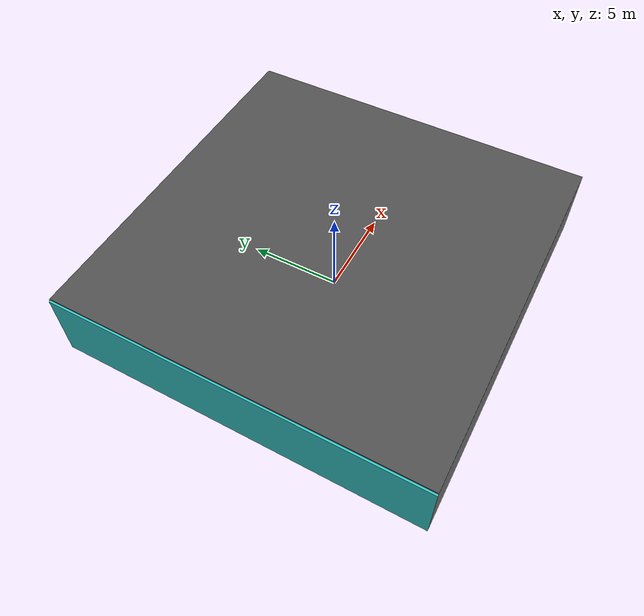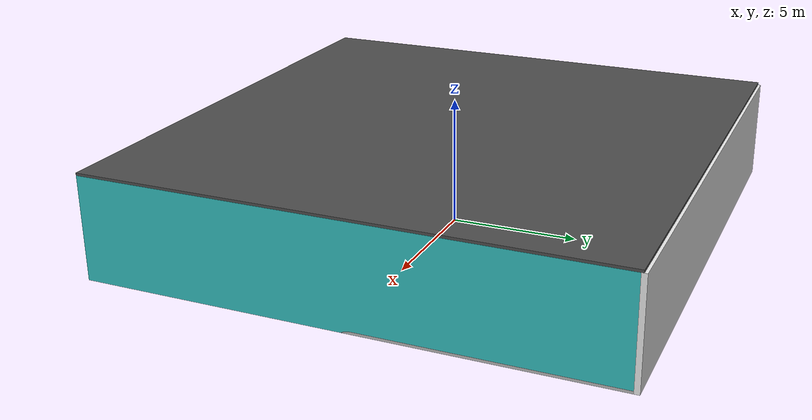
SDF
<sdf version="1.4">
 <world name="default">
  <physics type="ode">
   <max_step_size>0.001</max_step_size>
   <real_time_factor>1</real_time_factor>
   <real_time_update_rate>1000</real_time_update_rate>
   <gravity>0 0 -9.8</gravity>
  </physics>
  <scene><ambient>0.4 0.4 0.4 1</ambient><background>0.7 0.7 0.7 1</background><shadows>1</shadows></scene>
  <model name="Surrounding">
   <static>1</static>
   <link name="Ceiling">
    <collision name="Ceiling_Collision"><geometry><box><size>20 20 0.1</size></box></geometry></collision>
    <visual name="Ceiling_Visual">
     <geometry><box><size>20 20 0.1</size></box></geometry>
     <material>
      <script><uri>file://media/materials/scripts/gazebo.material</uri><name>Gazebo/DarkGrey</name></script>
     </material>
    </visual>
    <pose>0 0 4.05 0 0 0</pose>
   </link>
   <link name="Wall_South">
    <collision name="Wall_South_Collision">
     <geometry><box><size>20 0 4</size></box></geometry>
     <pose>0 0 2 0 -0 0</pose>
    </collision>
    <visual name="Wall_South_Visual">
     <pose>0 0 2 0 -0 0</pose>
     <geometry><box><size>20 0 4</size></box></geometry>
     <material>
      <script><uri>file://media/materials/scripts/gazebo.material</uri><name>Gazebo/Grey</name></script>
     </material>
    </visual>
    <velocity_decay><linear>0</linear><angular>0</angular></velocity_decay>
    <pose>0 -10 0 0 -0 0</pose>
   </link>
   <link name="Wall_East">
    <collision name="Wall_21_Collision">
     <geometry><box><size>20 0 4</size></box></geometry>
     <pose>0 0 2 0 -0 0</pose>
    </collision>
    <visual name="Wall_21_Visual">
     <pose>0 0 2 0 -0 0</pose>
     <geometry><box><size>20 0 4</size></box></geometry>
     <material>
      <script>
       <uri>file://media/materials/scripts/gazebo.material</uri>
       <name>Gazebo/TurquoiseGlowOutline</name>
      </script>
     </material>
    </visual>
    <velocity_decay><linear>0</linear><angular>0</angular></velocity_decay>
    <pose>10 0 0 0 -0 1.5708</pose>
   </link>
   <link name="Wall_North">
    <collision name="Wall_22_Collision">
     <geometry><box><size>20 0.2 4</size></box></geometry>
     <pose>0 0 2 0 -0 0</pose>
    </collision>
    <visual name="Wall_22_Visual">
     <pose>0 0 2 0 -0 0</pose>
     <geometry><box><size>20 0.2 4</size></box></geometry>
     <material>
      <script><uri>file://media/materials/scripts/gazebo.material</uri><name>Gazebo/White</name></script>
     </material>
    </visual>
    <velocity_decay><linear>0</linear><angular>0</angular></velocity_decay>
    <pose>0 10 0 0 -0 0</pose>
   </link>
   <link name="Wall_West">
    <collision name="Wall_23_Collision">
     <geometry><box><size>20 0.2 4</size></box></geometry>
     <pose>0 0 2 0 -0 0</pose>
    </collision>
    <visual name="Wall_23_Visual">
     <pose>0 0 2 0 -0 0</pose>
     <geometry><box><size>20 0.2 4</size></box></geometry>
     <material>
      <script>
       <uri>file://media/materials/scripts/gazebo.material</uri>
       <name>Gazebo/TurquoiseGlowOutline</name>
      </script>
     </material>
    </visual>
    <velocity_decay><linear>0</linear><angular>0</angular></velocity_decay>
    <pose>-10 0 0 0 0 -1.5708</pose>
   </link>
   <link name="Ground_link">
    <collision name="collision">
     <pose>0 0 .05 0 -0 0</pose>
     <geometry><box><size>20 20 0.1</size></box></geometry>
    </collision>
    <visual name="visual">
     <pose>0 0 .05 0 -0 0</pose>
     <geometry><box><size>20 20 0.1</size></box></geometry>
     <material>
      <script><uri>file://media/materials/scripts/gazebo.material</uri><name>Gazebo/JointAnchor</name></script>
     </material>
    </visual>
   </link>
   <static>1</static>
  </model>
  <spherical_coordinates>
   <surface_model>EARTH_WGS84</surface_model>
   <latitude_deg>0</latitude_deg>
   <longitude_deg>0</longitude_deg>
   <elevation>0</elevation>
   <heading_deg>0</heading_deg>
  </spherical_coordinates>
  <light name="lightball_0" type="diffuse">
   <diffuse>0.8 0.8 0.8 1</diffuse>
   <specular>0.2 0.2 0.2 1</specular>
   <attenuation>
    <range>100</range>
    <constant>0.7</constant>
    <linear>0.01</linear>
    <quadratic>0.001</quadratic>
   </attenuation>
   <direction>-0.5 0.1 -0.9</direction>
   <pose>0.587604856644 -3.50685347159 0.576763039107 0 0 0</pose>
  </light>
  <light name="lightball_1" type="diffuse">
   <diffuse>0.8 0.8 0.8 1</diffuse>
   <specular>0.2 0.2 0.2 1</specular>
   <attenuation>
    <range>100</range>
    <constant>0.7</constant>
    <linear>0.01</linear>
    <quadratic>0.001</quadratic>
   </attenuation>
   <direction>-0.5 0.1 -0.9</direction>
   <pose>3.27953467645 3.23705403153 1.65192382688 0 0 0</pose>
  </light>
  <light name="lightball_2" type="diffuse">
   <diffuse>0.8 0.8 0.8 1</diffuse>
   <specular>0.2 0.2 0.2 1</specular>
   <attenuation>
    <range>100</range>
    <constant>0.7</constant>
    <linear>0.01</linear>
    <quadratic>0.001</quadratic>
   </attenuation>
   <direction>-0.5 0.1 -0.9</direction>
   <pose>-6.15322628077 -5.1997236948 2.37607932202 0 0 0</pose>
  </light>
  <light name="lightball_3" type="diffuse">
   <diffuse>0.8 0.8 0.8 1</diffuse>
   <specular>0.2 0.2 0.2 1</specular>
   <attenuation>
    <range>100</range>
    <constant>0.7</constant>
    <linear>0.01</linear>
    <quadratic>0.001</quadratic>
   </attenuation>
   <direction>-0.5 0.1 -0.9</direction>
   <pose>3.39601801137 2.30372344502 2.50413641457 0 0 0</pose>
  </light>
  <include><uri>model://table</uri><pose>-7.94680993954 -7.22397722396 0 0 0 0.43770901632</pose></include>
  <include><uri>model://cabinet</uri><pose>-4.98384009035 -7.88236710008 0 0 0 3.03830939826</pose></include>
  <include><uri>model://cabinet</uri><pose>-2.04212631011 4.00846543617 0 0 0 1.01509657193</pose></include>
  <include>
   <uri>model://textured_shapes</uri>
   <pose>-2.07144204875 6.97678345721 0 0 0 1.22761798612</pose>
  </include>
  <include><uri>model://cabinet</uri><pose>4.77333421321 -5.08126906264 0 0 0 0.7265014782</pose></include>
  <include>
   <uri>model://textured_shapes</uri>
   <pose>4.94553263062 1.94655995316 0 0 0 1.72147228008</pose>
  </include>
  <include><uri>model://table</uri><pose>7.18738373188 -1.84760507135 0 0 0 0.180965854598</pose></include>
 </world>
</sdf>

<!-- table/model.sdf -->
<sdf version="1.5">
  <model name="table">
    <static>true</static>
    <link name="link">
      <collision name="surface">
        <pose>0 0 1.0 0 0 0</pose>
        <geometry>
          <box>
            <size>1.5 0.8 0.03</size>
          </box>
        </geometry>
        <surface>
          <friction>
            <ode>
              <mu>0.6</mu>
              <mu2>0.6</mu2>
            </ode>
          </friction>
        </surface>
      </collision>
      <visual name="visual1">
        <pose>0 0 1.0 0 0 0</pose>
        <geometry>
          <box>
            <size>1.5 0.8 0.03</size>
          </box>
        </geometry>
        <material>
          <script>
            <uri>model://media/materials/scripts/gazebo.material</uri>
            <name>Gazebo/Wood</name>
          </script>
        </material>
      </visual>
      <collision name="front_left_leg">
        <pose>0.68 0.38 0.5 0 0 0</pose>
        <geometry>
          <cylinder>
            <radius>0.02</radius>
            <length>1.0</length>
          </cylinder>
        </geometry>
      </collision>
      <visual name="front_left_leg">
        <pose>0.68 0.38 0.5 0 0 0</pose>
        <geometry>
          <cylinder>
            <radius>0.02</radius>
            <length>1.0</length>
          </cylinder>
        </geometry>
        <material>
          <script>
            <uri>model://media/materials/scripts/gazebo.material</uri>
            <name>Gazebo/Grey</name>
          </script>
        </material>
      </visual>
      <collision name="front_right_leg">
        <pose>0.68 -0.38 0.5 0 0 0</pose>
        <geometry>
          <cylinder>
            <radius>0.02</radius>
            <length>1.0</length>
          </cylinder>
        </geometry>
      </collision>
      <visual name="front_right_leg">
        <pose>0.68 -0.38 0.5 0 0 0</pose>
        <geometry>
          <cylinder>
            <radius>0.02</radius>
            <length>1.0</length>
          </cylinder>
        </geometry>
        <material>
          <script>
            <uri>model://media/materials/scripts/gazebo.material</uri>
            <name>Gazebo/Grey</name>
          </script>
        </material>
      </visual>
      <collision name="back_right_leg">
        <pose>-0.68 -0.38 0.5 0 0 0</pose>
        <geometry>
          <cylinder>
            <radius>0.02</radius>
            <length>1.0</length>
          </cylinder>
        </geometry>
      </collision>
      <visual name="back_right_leg">
        <pose>-0.68 -0.38 0.5 0 0 0</pose>
        <geometry>
          <cylinder>
            <radius>0.02</radius>
            <length>1.0</length>
          </cylinder>
        </geometry>
        <material>
          <script>
            <uri>model://media/materials/scripts/gazebo.material</uri>
            <name>Gazebo/Grey</name>
          </script>
        </material>
      </visual>
      <collision name="back_left_leg">
        <pose>-0.68 0.38 0.5 0 0 0</pose>
        <geometry>
          <cylinder>
            <radius>0.02</radius>
            <length>1.0</length>
          </cylinder>
        </geometry>
      </collision>
      <visual name="back_left_leg">
        <pose>-0.68 0.38 0.5 0 0 0</pose>
        <geometry>
          <cylinder>
            <radius>0.02</radius>
            <length>1.0</length>
          </cylinder>
        </geometry>
        <material>
          <script>
            <uri>model://media/materials/scripts/gazebo.material</uri>
            <name>Gazebo/Grey</name>
          </script>
        </material>
      </visual>
    </link>
  </model>
</sdf>

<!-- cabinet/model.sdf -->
<sdf version="1.5">
  <model name="cabinet">
    <static>true</static>
    <link name="cabinet_bottom_plate">
      <inertial>
        <pose>0 0 -1 0 0 0</pose>
        <inertia>
          <ixx>2.050000</ixx>
          <ixy>0</ixy>
          <ixz>0</ixz>
          <iyy>2.050000</iyy>
          <iyz>0</iyz>
          <izz>2.050000</izz>
        </inertia>
        <mass>25.000000</mass>
      </inertial>
      <collision name="cabinet_bottom_plate_geom">
        <pose>0 0 0.010000 0 0 0</pose>
        <geometry>
          <box>
            <size>0.450000 0.450000 0.020000</size>
          </box>
        </geometry>
      </collision>
      <visual name="cabinet_bottom_plate_geom_visual">
        <pose>0 0 0.010000 0 0 0</pose>
        <geometry>
          <box>
            <size>0.450000 0.450000 0.020000</size>
          </box>
        </geometry>
        <material>
          <script>
            <uri>model://media/materials/scripts/gazebo.material</uri>
            <name>Gazebo/Wood</name>
          </script>
        </material>
      </visual>
      <collision name="cabinet_bottom_plate_geom_cabinet_back_plate">
        <pose>0.235000 0 0.510000 0 0 0</pose>
        <geometry>
          <box>
            <size>0.020000 0.450000 1.020000</size>
          </box>
        </geometry>
      </collision>
      <visual name="cabinet_bottom_plate_geom_cabinet_back_plate_visual">
        <pose>0.235000 0 0.510000 0 0 0</pose>
        <geometry>
          <box>
            <size>0.020000 0.450000 1.020000</size>
          </box>
        </geometry>
        <material>
          <script>
            <uri>model://media/materials/scripts/gazebo.material</uri>
            <name>Gazebo/Wood</name>
          </script>
        </material>
      </visual>
      <collision name="cabinet_bottom_plate_geom_cabinet_left_plate">
        <pose>0 0.235000 0.510000 0 0 0</pose>
        <geometry>
          <box>
            <size>0.450000 0.020000 1.020000</size>
          </box>
        </geometry>
      </collision>
      <visual name="cabinet_bottom_plate_geom_cabinet_left_plate_visual">
        <pose>0 0.235000 0.510000 0 0 0</pose>
        <geometry>
          <box>
            <size>0.450000 0.020000 1.020000</size>
          </box>
        </geometry>
        <material>
          <script>
            <uri>model://media/materials/scripts/gazebo.material</uri>
            <name>Gazebo/Wood</name>
          </script>
        </material>
      </visual>
      <collision name="cabinet_bottom_plate_geom_cabinet_middle_plate">
        <pose>0 0 0.510000 0 0 0</pose>
        <geometry>
          <box>
            <size>0.450000 0.450000 0.020000</size>
          </box>
        </geometry>
      </collision>
      <visual name="cabinet_bottom_plate_geom_cabinet_middle_plate_visual">
        <pose>0 0 0.510000 0 0 0</pose>
        <geometry>
          <box>
            <size>0.450000 0.450000 0.020000</size>
          </box>
        </geometry>
        <material>
          <script>
            <uri>model://media/materials/scripts/gazebo.material</uri>
            <name>Gazebo/Wood</name>
          </script>
        </material>
      </visual>
      <collision name="cabinet_bottom_plate_geom_cabinet_right_plate">
        <pose>0 -0.235000 0.510000 0 0 0</pose>
        <geometry>
          <box>
            <size>0.450000 0.020000 1.020000</size>
          </box>
        </geometry>
      </collision>
      <visual name="cabinet_bottom_plate_geom_cabinet_right_plate_visual">
        <pose>0 -0.235000 0.510000 0 0 0</pose>
        <geometry>
          <box>
            <size>0.450000 0.020000 1.020000</size>
          </box>
        </geometry>
        <material>
          <script>
            <uri>model://media/materials/scripts/gazebo.material</uri>
            <name>Gazebo/Wood</name>
          </script>
        </material>
      </visual>
      <collision name="cabinet_bottom_plate_geom_cabinet_top_plate">
        <pose>0 0 1.010000 0 0 0</pose>
        <geometry>
          <box>
            <size>0.450000 0.450000 0.020000</size>
          </box>
        </geometry>
      </collision>
      <visual name="cabinet_bottom_plate_geom_cabinet_top_plate_visual">
        <pose>0 0 1.010000 0 0 0</pose>
        <geometry>
          <box>
            <size>0.450000 0.450000 0.020000</size>
          </box>
        </geometry>
        <material>
          <script>
            <uri>model://media/materials/scripts/gazebo.material</uri>
            <name>Gazebo/Wood</name>
          </script>
        </material>
      </visual>
    </link>
  </model>
</sdf>

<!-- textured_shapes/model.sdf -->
<sdf version="1.6">
  <model name="textured_shapes">
    <pose>0 0 0.5 0 0 0</pose>
    <link name="box">
      <pose>0 -1.5 0 0 0 0</pose>
      <collision name="collision">
        <geometry>
          <box>
            <size>1 1 1</size>
          </box>
        </geometry>
      </collision>
      <visual name="visual">
        <geometry>
          <box>
            <size>1 1 1</size>
          </box>
        </geometry>
        <material>
          <script>
            <uri>model://../model_source/models/textured_shapes/materials/scripts</uri>
            <uri>model://../model_source/models/textured_shapes/materials/textures</uri>
            <name>TexturedShape/Squares</name>
          </script>
        </material>
      </visual>
    </link>
    <link name="sphere">
      <collision name="collision">
        <geometry>
          <sphere>
            <radius>0.5</radius>
          </sphere>
        </geometry>
      </collision>
      <visual name="visual">
        <geometry>
          <sphere>
            <radius>0.5</radius>
          </sphere>
        </geometry>
        <material>
          <script>
            <uri>model://../model_source/models/textured_shapes/materials/scripts</uri>
            <uri>model://../model_source/models/textured_shapes/materials/textures</uri>
            <name>TexturedShape/Squares</name>
          </script>
        </material>
      </visual>
    </link>
    <link name="cylinder">
      <pose>0 1.5 0 0 0 0</pose>
      <collision name="collision">
        <geometry>
          <cylinder>
            <radius>0.5</radius>
            <length>1</length>
          </cylinder>
        </geometry>
      </collision>
      <visual name="visual">
        <geometry>
          <cylinder>
            <radius>0.5</radius>
            <length>1</length>
          </cylinder>
        </geometry>
        <material>
          <script>
            <uri>model://../model_source/models/textured_shapes/materials/scripts</uri>
            <uri>model://../model_source/models/textured_shapes/materials/textures</uri>
            <name>TexturedShape/Squares</name>
          </script>
        </material>
      </visual>
    </link>
  </model>
</sdf>
